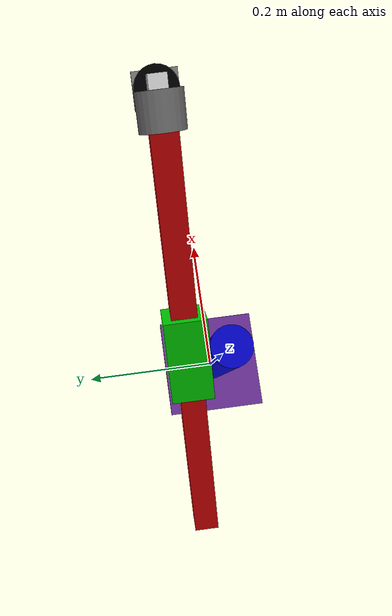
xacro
<?xml version="1.0" encoding="UTF-8"?>
<robot xmlns:xacro="http://wiki.ros.org/xacro" name="sushi_bot">

  <xacro:arg name="prefix" default="" />
  <xacro:arg name="use_mock_hardware" default="false" />
  <xacro:arg name="mock_sensor_commands" default="false" />
  <xacro:arg name="sim_gazebo_classic" default="false" />
  <xacro:arg name="simulation_controllers" default="" />

  <xacro:include filename="$(find sushi_bot_description)/urdf/common.xacro" />
  <xacro:include filename="$(find sushi_bot_description)/urdf/sushi_bot/stanford_robot_macro.xacro" />
  <xacro:include filename="$(find sushi_bot_description)/urdf/sushi_bot/simple_gripper_macro.xacro" />
  <xacro:include filename="$(find sushi_bot_description)/urdf/sushi_bot/sushi_bot_macro.ros2_control.xacro" />

  <!-- worldに固定されたリンクを作る -->
  <link name="world" />

  <!-- ロボットのマクロを読み込む -->
  <xacro:stanford_robot prefix="$(arg prefix)" parent="world">
    <origin xyz="0 0 0" rpy="0 0 0" />
  </xacro:stanford_robot>
  <xacro:simple_gripper prefix="$(arg prefix)" parent="$(arg prefix)tool0" />

  <!-- コントローラーのマクロを読み込む -->
  <xacro:sushi_bot_ros2_control
    name="sushi_bot"
    prefix="$(arg prefix)"
    use_mock_hardware="$(arg use_mock_hardware)"
    mock_sensor_commands="$(arg mock_sensor_commands)"
    sim_gazebo_classic="$(arg sim_gazebo_classic)" />

  <!-- Gazebo Classicのプラグインを読み込む -->
  <xacro:if value="$(arg sim_gazebo_classic)">
    <gazebo reference="world">
    </gazebo>
    <gazebo>
      <plugin filename="libgazebo_ros2_control.so" name="gazebo_ros2_control">
        <parameters>$(arg simulation_controllers)</parameters>
      </plugin>
    </gazebo>
  </xacro:if>

</robot>

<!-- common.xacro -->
<robot xmlns:xacro="http://www.ros.org/wiki/xacro">

  <xacro:macro name="default_inertial">
    <inertial>
      <origin xyz="0 0 0" rpy="0 0 0" />
      <mass value="0.01" />
      <inertia ixx="0.001" ixy="0.0" ixz="0.0"
        iyy="0.001" iyz="0.0" izz="0.001" />
    </inertial>
  </xacro:macro>

  <material name="StoglRobotics/Violet">
    <color rgba="${102/255} ${46/255} ${145/255} 1.0" />
    <ambient>1 0 0 1</ambient>
    <diffuse>1 0 0 1</diffuse>
    <specular>0.1 0.1 0.1 1</specular>
    <emissive>0 0 0 0</emissive>
  </material>

  <material name="StoglRobotics/DarkGrey">
    <color rgba="${51/255} ${51/255} ${51/255} 1.0" />
    <ambient>1 0 0 1</ambient>
    <diffuse>1 0 0 1</diffuse>
    <specular>0.1 0.1 0.1 1</specular>
    <emissive>0 0 0 0</emissive>
  </material>

  <material name="StoglRobotics/LightGrey">
    <color rgba="${194/255} ${194/255} ${194/255} 1.0" />
    <ambient>1 0 0 1</ambient>
    <diffuse>1 0 0 1</diffuse>
    <specular>0.1 0.1 0.1 1</specular>
    <emissive>0 0 0 0</emissive>
  </material>

  <material name="Blue">
    <color rgba="${0/255} ${0/255} ${194/255} 1.0" />
    <ambient>1 0 0 1</ambient>
    <diffuse>1 0 0 1</diffuse>
    <specular>0.1 0.1 0.1 1</specular>
    <emissive>0 0 0 0</emissive>
  </material>

  <material name="Green">
    <color rgba="${0/255} ${194/255} ${0/255} 1.0" />
    <ambient>0 1 0 1</ambient>
    <diffuse>0 1 0 1</diffuse>
    <specular>0.1 0.1 0.1 1</specular>
    <emissive>0 0 0 0</emissive>
  </material>

  <material name="Red">
    <color rgba="${194/255} ${0/255} ${0/255} 1.0" />
    <ambient>1 0 0 1</ambient>
    <diffuse>1 0 0 1</diffuse>
    <specular>0.1 0.1 0.1 1</specular>
    <emissive>0 0 0 0</emissive>
  </material>

  <material name="Gray">
    <color rgba="${128/255} ${128/255} ${128/255} 1.0" />
    <ambient>0.5 0.5 0.5 1</ambient>
    <diffuse>0.5 0.5 0.5 1</diffuse>
    <specular>0.1 0.1 0.1 1</specular>
    <emissive>0 0 0 0</emissive>
  </material>

  <material name="White">
    <color rgba="1 1 1 1.0" />
    <ambient>1 1 1 1</ambient>
    <diffuse>1 1 1 1</diffuse>
    <specular>0.1 0.1 0.1 1</specular>
    <emissive>0 0 0 0</emissive>
  </material>

  <material name="Black">
    <color rgba="0 0 0 1.0" />
    <ambient>0 0 0 1</ambient>
    <diffuse>0 0 0 1</diffuse>
    <specular>0.1 0.1 0.1 1</specular>
    <emissive>0 0 0 0</emissive>
  </material>

  <material name="Cyan">
    <color rgba="${0/255} ${255/255} ${255/255} 1.0" />
    <ambient>0 1 1 1</ambient>
    <diffuse>0 1 1 1</diffuse>
    <specular>0.1 0.1 0.1 1</specular>
    <emissive>0 0 0 0</emissive>
  </material>

  <material name="Violet">
    <color rgba="${102/255} ${46/255} ${145/255} 1.0" />
    <ambient>1 0 0 1</ambient>
    <diffuse>1 0 0 1</diffuse>
    <specular>0.1 0.1 0.1 1</specular>
    <emissive>0 0 0 0</emissive>
  </material>

</robot>

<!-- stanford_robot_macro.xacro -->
<robot xmlns:xacro="http://www.ros.org/wiki/xacro">

  <xacro:macro name="stanford_robot" params="prefix parent *origin">

    <joint name="${prefix}base_joint" type="fixed">
      <xacro:insert_block name="origin" />
      <parent link="${parent}" />
      <child link="${prefix}base_link" />
    </joint>

    <link name="${prefix}base_link">
      <xacro:default_inertial />
      <visual>
        <origin xyz="0 0 0.005" rpy="0 0 0" />
        <geometry>
          <box size="0.15 0.15 0.01" />
        </geometry>
        <material name="Violet" />
      </visual>
      <collision>
        <origin xyz="0 0 0.005" rpy="0 0 0" />
        <geometry>
          <box size="0.15 0.15 0.01" />
        </geometry>
      </collision>
    </link>
    <gazebo reference="${prefix}base_link">
      <material>Gazebo/Orange</material>
    </gazebo>

    <joint name="${prefix}joint_1" type="revolute">
      <parent link="${prefix}base_link" />
      <child link="${prefix}link_0" />
      <origin xyz="0 0 0.01" rpy="0 0 0" />
      <axis xyz="0 0 1" />
      <limit effort="1000" velocity="${radians(180)}" lower="-3.1416" upper="3.1416" />
    </joint>

    <link name="${prefix}link_0">
      <xacro:default_inertial />
      <visual>
        <origin xyz="0 0 0.15" rpy="0 0 0" />
        <geometry>
          <cylinder radius="0.025" length="0.30" />
        </geometry>
        <material name="Blue" />
      </visual>
      <collision>
        <origin xyz="0 0 0.15" rpy="0 0 0" />
        <geometry>
          <cylinder radius="0.025" length="0.30" />
        </geometry>
      </collision>
    </link>
    <gazebo reference="${prefix}link_0">
      <material>Gazebo/Orange</material>
    </gazebo>

    <!-- Joint 2 Revolute about Y, between link_0 and link_1 -->
    <joint name="${prefix}joint_2" type="revolute">
      <parent link="${prefix}link_0" />
      <child link="${prefix}link_1" />
      <origin xyz="0 0.05 0.275" rpy="0 ${radians(60)} 0" />
      <axis xyz="0 1 0" />
      <limit effort="1000" velocity="${radians(180)}" lower="-3.1416" upper="3.1416" />
    </joint>

    <!-- Link 1 -->
    <link name="${prefix}link_1">
      <xacro:default_inertial />
      <visual>
        <origin xyz="0 0 0.0" rpy="0 0 0" />
        <geometry>
          <box size="0.05 0.05 0.10" />
        </geometry>
        <material name="Green" />
      </visual>
      <collision>
        <origin xyz="0 0.05 0.0" rpy="0 0 0" />
        <geometry>
          <box size="0.05 0.05 0.10" />
        </geometry>
      </collision>
    </link>
    <gazebo reference="${prefix}link_1">
      <material>Gazebo/Blue</material>
    </gazebo>

    <!-- Joint 3 直動リンク Prismatic -->
    <joint name="${prefix}joint_3" type="prismatic">
      <parent link="${prefix}link_1" />
      <child link="${prefix}link_2" />
      <origin xyz="0 0 0.0" rpy="0 0 0" />
      <axis xyz="0 0 1" />
      <limit effort="1000.0" velocity="0.3" lower="-0.2" upper="0.2" />
    </joint>

    <!-- Link 2 -->
    <link name="${prefix}link_2">
      <xacro:default_inertial />
      <visual>
        <origin xyz="0 0 0" rpy="0 0 0" />
        <geometry>
          <box size="0.03 0.03 0.50" />
        </geometry>
        <material name="Red" />
      </visual>
      <collision>
        <origin xyz="0 0 0.0" rpy="0 0 0" />
        <geometry>
          <box size="0.03 0.03 0.50" />
        </geometry>
      </collision>
    </link>
    <gazebo reference="${prefix}link_2">
      <material>Gazebo/Yellow</material>
    </gazebo>

    <!-- Joint 4 Revolute about Z, between link_2 and link_3 -->
    <joint name="${prefix}joint_4" type="revolute">
      <parent link="${prefix}link_2" />
      <child link="${prefix}link_3" />
      <origin xyz="0 0 0.25" rpy="0 0 0" />
      <axis xyz="0 0 1" />
      <limit effort="1000" velocity="${radians(180)}" lower="-3.1416" upper="3.1416" />
    </joint>

    <!-- Link 3 -->
    <link name="${prefix}link_3">
      <xacro:default_inertial />
      <visual>
        <origin xyz="0 0 0.02" rpy="0 0 0" />
        <geometry>
          <cylinder radius="0.025" length="0.04" />
        </geometry>
        <material name="Gray" />
      </visual>
      <collision>
        <origin xyz="0 0 0.02" rpy="0 0 0" />
        <geometry>
          <cylinder radius="0.025" length="0.04" />
        </geometry>
      </collision>
    </link>
    <gazebo reference="${prefix}link_3">
      <material>Gazebo/Green</material>
    </gazebo>

    <!-- Joint 5 Revolute about Y, between link_3 and link_4 -->
    <joint name="${prefix}joint_5" type="revolute">
      <parent link="${prefix}link_3" />
      <child link="${prefix}link_4" />
      <origin xyz="0 0 0.04" rpy="0 ${radians(90)} 0" />
      <axis xyz="0 1 0" />
      <limit effort="1000" velocity="${radians(180)}" lower="-3.1416" upper="3.1416" />
    </joint>

    <!-- Link 4 -->
    <link name="${prefix}link_4">
      <xacro:default_inertial />
      <visual>
        <origin xyz="0 0 0.02" rpy="0 0 0" />
        <geometry>
          <box size="0.03 0.02 0.04" />
        </geometry>
        <material name="White" />
      </visual>
      <collision>
        <origin xyz="0 0 0.02" rpy="0 0 0" />
        <geometry>
          <box size="0.03 0.02 0.04" />
        </geometry>
      </collision>
    </link>
    <gazebo reference="${prefix}link_4">
      <material>Gazebo/Red</material>
    </gazebo>

    <!-- Joint 6 Revolute (wrist), between link_4 and flange -->
    <joint name="${prefix}joint_6" type="revolute">
      <parent link="${prefix}link_4" />
      <child link="${prefix}link_5" />
      <origin xyz="0 0 0.04" rpy="0 0 0" />
      <axis xyz="0 0 1" />
      <limit effort="30.0" velocity="${radians(180)}" lower="-3.1416" upper="3.1416" />
    </joint>

    <!-- Flange Link (Link 5) -->
    <link name="${prefix}link_5">
      <xacro:default_inertial />
      <visual>
        <origin xyz="0 0 0.005" rpy="0 0 0" />
        <geometry>
          <cylinder radius="0.025" length="0.01" />
        </geometry>
        <material name="Black" />
      </visual>
      <collision>
        <origin xyz="0 0 0.005" rpy="0 0 0" />
        <geometry>
          <cylinder radius="0.025" length="0.01" />
        </geometry>
      </collision>
    </link>
    <gazebo reference="${prefix}link_5">
      <material>Gazebo/White</material>
    </gazebo>

    <!-- 実機での作業点と一致するTOOLフレームの定義、エンドエフェクタ制御用フレーム -->
    <!-- 実体なし、TFツリーやMoveItとの整合のために非常に重要 -->
    <link name="${prefix}tool0" />

    <!-- Flange Link -->
    <!-- ツール（グリッパ、吸着パッドなど）を取り付ける標準フレーム -->
    <!-- REP 103準拠でX+軸がツール取付方向（前方）を向く -->
    <link name="${prefix}flange" />

    <!-- 実機制御器とURDFの原点を一致させるための基準フレーム -->
    <!-- ROS-I仕様の標準、制御器の「ベース」座標に対応 -->
    <link name="${prefix}base" />

    <!-- tool joint - fixed -->
    <joint name="${prefix}tool_joint" type="fixed">
      <parent link="${prefix}link_5" />
      <child link="${prefix}tool0" />
      <origin xyz="0 0 0.01" rpy="0 0 0" />
    </joint>

    <!-- base joint - fixed -->
    <joint name="${prefix}base_link-base_joint" type="fixed">
      <origin xyz="0 0 0" rpy="0 0 0" />
      <parent link="${prefix}base_link" />
      <child link="${prefix}base" />
    </joint>

    <!-- flange joint - fixed -->
    <joint name="${prefix}tool0-flange_joint" type="fixed">
      <origin xyz="0 0 0" rpy="0 0 0" />
      <parent link="${prefix}tool0" />
      <child link="${prefix}flange" />
    </joint>

  </xacro:macro>

</robot>

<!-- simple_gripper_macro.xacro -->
<robot xmlns:xacro="http://www.ros.org/wiki/xacro">

	<xacro:macro name="simple_gripper" params="prefix parent">
		<joint name="${prefix}gripper_base_joint" type="fixed">
			<parent link="${parent}" />
			<child link="${prefix}gripper_base" />
			<origin xyz="0 0 0" rpy="0 0 0" />
		</joint>

		<!-- Gripper Base -->
		<link name="${prefix}gripper_base">
			<xacro:default_inertial />
			<visual>
				<origin xyz="0 0 0.005" rpy="0 0 0" />
				<geometry>
					<box size="0.04 0.05 0.01" />
				</geometry>
				<material name="Grey" />
			</visual>
			<collision>
				<origin xyz="0 0 0.005" rpy="0 0 0" />
				<geometry>
					<box size="0.04 0.05 0.01" />
				</geometry>
			</collision>
		</link>
		<gazebo reference="${prefix}gripper_base">
			<material>Gazebo/Grey</material>
		</gazebo>

		<!-- Right Finger -->
		<joint name="${prefix}finger_right_joint" type="prismatic">
			<parent link="${prefix}gripper_base" />
			<child link="${prefix}finger_right" />
			<origin xyz="0 0.0 0.0" rpy="0 0 0" />
			<axis xyz="0 -1 0" />
			<limit lower="0.0" upper="0.02" effort="10.0" velocity="0.05" />
		</joint>
		<link name="${prefix}finger_right">
			<xacro:default_inertial />
			<visual>
				<origin xyz="0 -0.005 0.02" rpy="0 0 0" />
				<geometry>
					<box size="0.02 0.01 0.02" />
				</geometry>
				<material name="White" />
			</visual>
			<collision>
				<origin xyz="0 -0.005 0.02" rpy="0 0 0" />
				<geometry>
					<box size="0.02 0.01 0.02" />
				</geometry>
			</collision>
		</link>
		<gazebo reference="${prefix}finger_right">
			<material>Gazebo/White</material>
		</gazebo>

		<!-- Left Finger -->
		<joint name="${prefix}finger_left_joint" type="prismatic">
			<parent link="${prefix}gripper_base" />
			<child link="${prefix}finger_left" />
			<origin xyz="0 0 0.0" rpy="0 0 0" />
			<axis xyz="0 1 0" />
			<limit lower="0.0" upper="0.02" effort="10.0" velocity="0.05" />
		</joint>
		<link name="${prefix}finger_left">
			<xacro:default_inertial />
			<visual>
				<origin xyz="0 0.005 0.02" rpy="0 0 0" />
				<geometry>
					<box size="0.02 0.01 0.02" />
				</geometry>
				<material name="White" />
			</visual>
			<collision>
				<origin xyz="0 0.005 0.02" rpy="0 0 0" />
				<geometry>
					<box size="0.02 0.01 0.02" />
				</geometry>
			</collision>
		</link>
		<gazebo reference="${prefix}finger_left">
			<material>Gazebo/White</material>
		</gazebo>

		<joint name="${prefix}grasp_point_joint" type="fixed">
			<parent link="${prefix}gripper_base" />
			<child link="${prefix}grasp_point" />
			<origin xyz="0 0 0.02" rpy="0 0 0" />
		</joint>
		<link name="${prefix}grasp_point" />

	</xacro:macro>
</robot>
